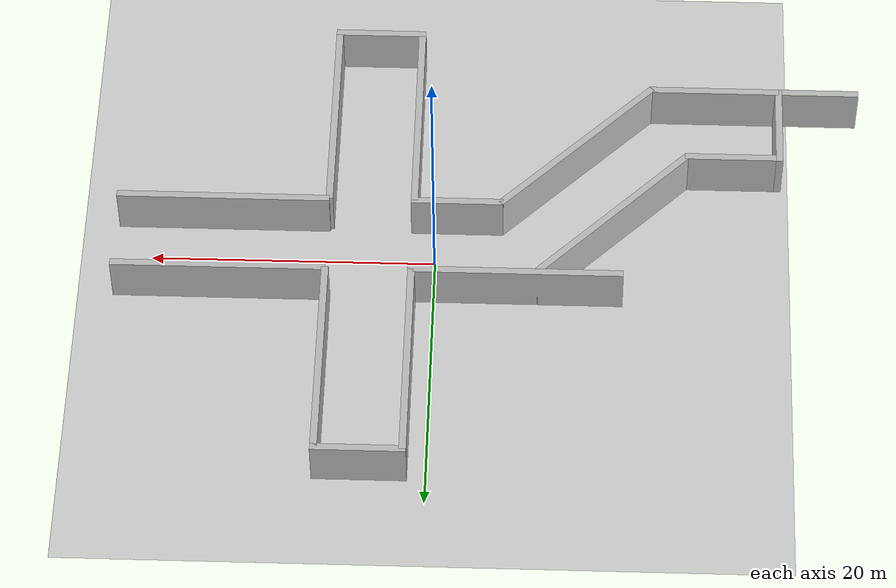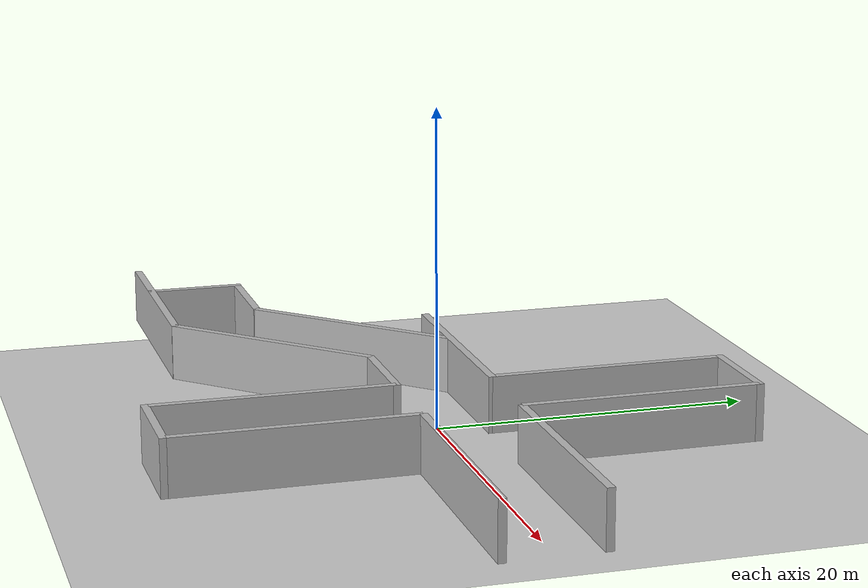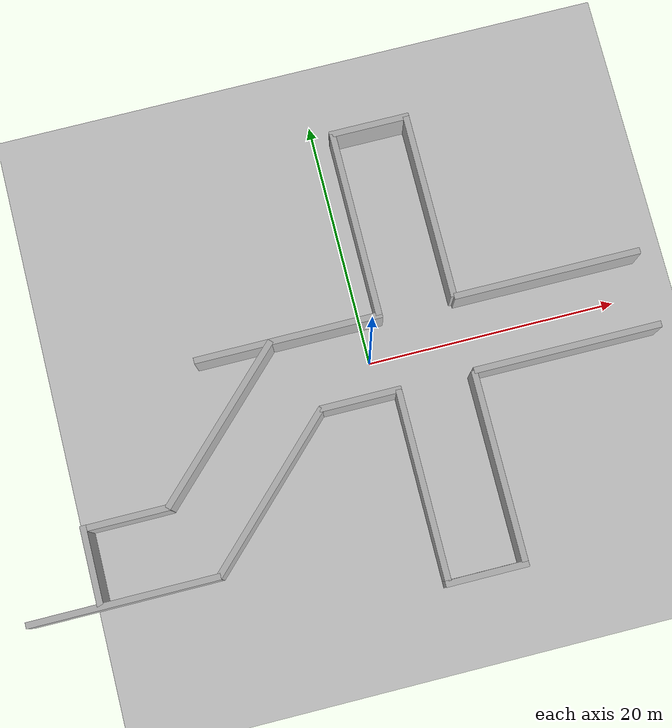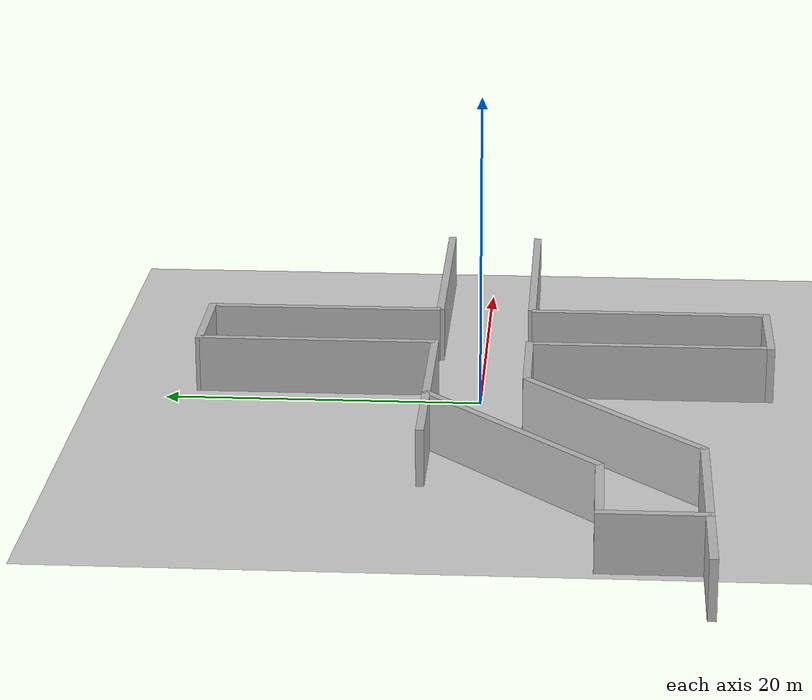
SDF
<sdf version="1.7">
 <world name="default">
  <light name="sun" type="directional">
   <pose>0 0 10 0 -0 0</pose>
   <diffuse>0.8 0.8 0.8 1</diffuse>
   <specular>0.2 0.2 0.2 1</specular>
   <attenuation>
    <range>1000</range>
    <constant>0.9</constant>
    <linear>0.01</linear>
    <quadratic>0.001</quadratic>
   </attenuation>
   <direction>-0.5 0.1 -0.9</direction>
   <spot><inner_angle>0</inner_angle><outer_angle>0</outer_angle><falloff>0</falloff></spot>
  </light>
  <gravity>0 0 -9.8</gravity>
  <magnetic_field>6e-06 2.3e-05 -4.2e-05</magnetic_field>
  <atmosphere type="adiabatic"/>
  <physics type="ode">
   <max_step_size>0.001</max_step_size>
   <real_time_factor>1</real_time_factor>
   <real_time_update_rate>1000</real_time_update_rate>
  </physics>
  <scene><ambient>0.4 0.4 0.4 1</ambient><background>0.7 0.7 0.7 1</background><shadows>1</shadows></scene>
  <spherical_coordinates>
   <surface_model>EARTH_WGS84</surface_model>
   <latitude_deg>0</latitude_deg>
   <longitude_deg>0</longitude_deg>
   <elevation>0</elevation>
   <heading_deg>0</heading_deg>
  </spherical_coordinates>
  <model name="mud_ground">
   <static>1</static>
   <link name="link">
    <collision name="collision">
     <geometry><plane><normal>0 0 1</normal><size>50 50</size></plane></geometry>
     <surface><friction><ode><mu>100</mu><mu2>50</mu2></ode></friction></surface>
    </collision>
    <visual name="visual">
     <cast_shadows>0</cast_shadows>
     <geometry><plane><normal>0 0 1</normal><size>50 50</size></plane></geometry>
     <material>
      <script>
       <uri>model://mud_ground/materials/scripts</uri>
       <uri>model://mud_ground/materials/textures</uri>
       <name>vrc/mud</name>
      </script>
     </material>
    </visual>
   </link>
  </model>
  <model name="mud_wall_1">
   <static>1</static>
   <link name="link">
    <pose>0 0 1.8 0 -0 0</pose>
    <collision name="collision"><geometry><box><size>15 0.5 3.6</size></box></geometry></collision>
    <visual name="visual">
     <cast_shadows>0</cast_shadows>
     <geometry><box><size>15 0.5 3.6</size></box></geometry>
     <material>
      <script>
       <uri>model://mud_wall/materials/scripts</uri>
       <uri>model://mud_wall/materials/textures</uri>
       <name>vrc/mud</name>
      </script>
     </material>
    </visual>
   </link>
   <pose>15 -3 0 0 -0 0</pose>
  </model>
  <model name="mud_wall_2">
   <static>1</static>
   <link name="link">
    <pose>0 0 1.8 0 -0 0</pose>
    <collision name="collision"><geometry><box><size>15 0.5 3.6</size></box></geometry></collision>
    <visual name="visual">
     <cast_shadows>0</cast_shadows>
     <geometry><box><size>15 0.5 3.6</size></box></geometry>
     <material>
      <script>
       <uri>model://mud_wall/materials/scripts</uri>
       <uri>model://mud_wall/materials/textures</uri>
       <name>vrc/mud</name>
      </script>
     </material>
    </visual>
   </link>
   <pose>15 3 0 0 -0 0</pose>
  </model>
  <model name="mud_wall_3">
   <static>1</static>
   <link name="link">
    <pose>0 0 1.8 0 -0 0</pose>
    <collision name="collision"><geometry><box><size>15 0.5 3.6</size></box></geometry></collision>
    <visual name="visual">
     <cast_shadows>0</cast_shadows>
     <geometry><box><size>15 0.5 3.6</size></box></geometry>
     <material>
      <script>
       <uri>model://mud_wall/materials/scripts</uri>
       <uri>model://mud_wall/materials/textures</uri>
       <name>vrc/mud</name>
      </script>
     </material>
    </visual>
   </link>
   <pose>7.5 10.5 0 0 -0 1.5708</pose>
  </model>
  <model name="mud_wall_4">
   <static>1</static>
   <link name="link">
    <pose>0 0 1.8 0 -0 0</pose>
    <collision name="collision"><geometry><box><size>15 0.5 3.6</size></box></geometry></collision>
    <visual name="visual">
     <cast_shadows>0</cast_shadows>
     <geometry><box><size>15 0.5 3.6</size></box></geometry>
     <material>
      <script>
       <uri>model://mud_wall/materials/scripts</uri>
       <uri>model://mud_wall/materials/textures</uri>
       <name>vrc/mud</name>
      </script>
     </material>
    </visual>
   </link>
   <pose>7.5 -10.5 0 0 -0 1.5708</pose>
  </model>
  <model name="mud_wall_5">
   <static>1</static>
   <link name="link">
    <pose>0 0 1.8 0 -0 0</pose>
    <collision name="collision"><geometry><box><size>15 0.5 3.6</size></box></geometry></collision>
    <visual name="visual">
     <cast_shadows>0</cast_shadows>
     <geometry><box><size>15 0.5 3.6</size></box></geometry>
     <material>
      <script>
       <uri>model://mud_wall/materials/scripts</uri>
       <uri>model://mud_wall/materials/textures</uri>
       <name>vrc/mud</name>
      </script>
     </material>
    </visual>
   </link>
   <pose>1.5 -10.5 0 0 -0 1.5708</pose>
  </model>
  <model name="mud_wall_6">
   <static>1</static>
   <link name="link">
    <pose>0 0 1.8 0 -0 0</pose>
    <collision name="collision"><geometry><box><size>15 0.5 3.6</size></box></geometry></collision>
    <visual name="visual">
     <cast_shadows>0</cast_shadows>
     <geometry><box><size>15 0.5 3.6</size></box></geometry>
     <material>
      <script>
       <uri>model://mud_wall/materials/scripts</uri>
       <uri>model://mud_wall/materials/textures</uri>
       <name>vrc/mud</name>
      </script>
     </material>
    </visual>
   </link>
   <pose>1.5 10.5 0 0 -0 1.5708</pose>
  </model>
  <model name="mud_wall_small">
   <static>1</static>
   <link name="link">
    <pose>0 0 1.8 0 -0 0</pose>
    <collision name="collision"><geometry><box><size>6.5 0.5 3.6</size></box></geometry></collision>
    <visual name="visual">
     <cast_shadows>0</cast_shadows>
     <geometry><box><size>6.5 0.5 3.6</size></box></geometry>
     <material>
      <script>
       <uri>model://mud_wall_small/materials/scripts</uri>
       <uri>model://mud_wall_small/materials/textures</uri>
       <name>vrc/mud</name>
      </script>
     </material>
    </visual>
   </link>
   <pose>4.5 18 0 0 -0 0</pose>
  </model>
  <model name="mud_wall_small_0">
   <static>1</static>
   <link name="link">
    <pose>0 0 1.8 0 -0 0</pose>
    <collision name="collision"><geometry><box><size>6.5 0.5 3.6</size></box></geometry></collision>
    <visual name="visual">
     <cast_shadows>0</cast_shadows>
     <geometry><box><size>6.5 0.5 3.6</size></box></geometry>
     <material>
      <script>
       <uri>model://mud_wall_small/materials/scripts</uri>
       <uri>model://mud_wall_small/materials/textures</uri>
       <name>vrc/mud</name>
      </script>
     </material>
    </visual>
   </link>
   <pose>4.5 -18.18 0 0 -0 0</pose>
  </model>
  <model name="mud_wall_small_1">
   <static>1</static>
   <link name="link">
    <pose>0 0 1.8 0 -0 0</pose>
    <collision name="collision"><geometry><box><size>6.5 0.5 3.6</size></box></geometry></collision>
    <visual name="visual">
     <cast_shadows>0</cast_shadows>
     <geometry><box><size>6.5 0.5 3.6</size></box></geometry>
     <material>
      <script>
       <uri>model://mud_wall_small/materials/scripts</uri>
       <uri>model://mud_wall_small/materials/textures</uri>
       <name>vrc/mud</name>
      </script>
     </material>
    </visual>
   </link>
   <pose>-1.5 -3 0 0 -0 0</pose>
  </model>
  <model name="mud_wall">
   <static>1</static>
   <link name="link">
    <pose>0 0 1.8 0 -0 0</pose>
    <collision name="collision"><geometry><box><size>15 0.5 3.6</size></box></geometry></collision>
    <visual name="visual">
     <cast_shadows>0</cast_shadows>
     <geometry><box><size>15 0.5 3.6</size></box></geometry>
     <material>
      <script>
       <uri>model://mud_wall/materials/scripts</uri>
       <uri>model://mud_wall/materials/textures</uri>
       <name>vrc/mud</name>
      </script>
     </material>
    </visual>
   </link>
   <pose>-12.4244 -2.22504 0 0 -0 0.7854</pose>
  </model>
  <model name="mud_wall_0">
   <static>1</static>
   <link name="link">
    <pose>0 0 1.8 0 -0 0</pose>
    <collision name="collision"><geometry><box><size>15 0.5 3.6</size></box></geometry></collision>
    <visual name="visual">
     <cast_shadows>0</cast_shadows>
     <geometry><box><size>15 0.5 3.6</size></box></geometry>
     <material>
      <script>
       <uri>model://mud_wall/materials/scripts</uri>
       <uri>model://mud_wall/materials/textures</uri>
       <name>vrc/mud</name>
      </script>
     </material>
    </visual>
   </link>
   <pose>-5.75 3 0 0 -0 0</pose>
  </model>
  <model name="mud_wall_clone">
   <static>1</static>
   <link name="link">
    <pose>0 0 1.8 0 -0 0</pose>
    <collision name="collision"><geometry><box><size>15 0.5 3.6</size></box></geometry></collision>
    <visual name="visual">
     <cast_shadows>0</cast_shadows>
     <geometry><box><size>15 0.5 3.6</size></box></geometry>
     <material>
      <script>
       <uri>model://mud_wall/materials/scripts</uri>
       <uri>model://mud_wall/materials/textures</uri>
       <name>vrc/mud</name>
      </script>
     </material>
    </visual>
   </link>
   <pose>-9.88316 -8.24356 0 0 -0 0.7854</pose>
  </model>
  <model name="mud_wall_small_2">
   <static>1</static>
   <link name="link">
    <pose>0 0 1.8 0 -0 0</pose>
    <collision name="collision"><geometry><box><size>6.5 0.5 3.6</size></box></geometry></collision>
    <visual name="visual">
     <cast_shadows>0</cast_shadows>
     <geometry><box><size>6.5 0.5 3.6</size></box></geometry>
     <material>
      <script>
       <uri>model://mud_wall_small/materials/scripts</uri>
       <uri>model://mud_wall_small/materials/textures</uri>
       <name>vrc/mud</name>
      </script>
     </material>
    </visual>
   </link>
   <pose>-20.7797 -7.48163 0 0 -0 0</pose>
  </model>
  <model name="mud_wall_7">
   <static>1</static>
   <link name="link">
    <pose>0 0 1.8 0 -0 0</pose>
    <collision name="collision"><geometry><box><size>15 0.5 3.6</size></box></geometry></collision>
    <visual name="visual">
     <cast_shadows>0</cast_shadows>
     <geometry><box><size>15 0.5 3.6</size></box></geometry>
     <material>
      <script>
       <uri>model://mud_wall/materials/scripts</uri>
       <uri>model://mud_wall/materials/textures</uri>
       <name>vrc/mud</name>
      </script>
     </material>
    </visual>
   </link>
   <pose>-22.4958 -13.475 0 0 -0 0</pose>
  </model>
  <model name="mud_wall_small_3">
   <static>1</static>
   <link name="link">
    <pose>0 0 1.8 0 -0 0</pose>
    <collision name="collision"><geometry><box><size>6.5 0.5 3.6</size></box></geometry></collision>
    <visual name="visual">
     <cast_shadows>0</cast_shadows>
     <geometry><box><size>6.5 0.5 3.6</size></box></geometry>
     <material>
      <script>
       <uri>model://mud_wall_small/materials/scripts</uri>
       <uri>model://mud_wall_small/materials/textures</uri>
       <name>vrc/mud</name>
      </script>
     </material>
    </visual>
   </link>
   <pose>-24.2605 -10.4727 0 0 -0 1.5708</pose>
  </model>
 </world>
</sdf>
